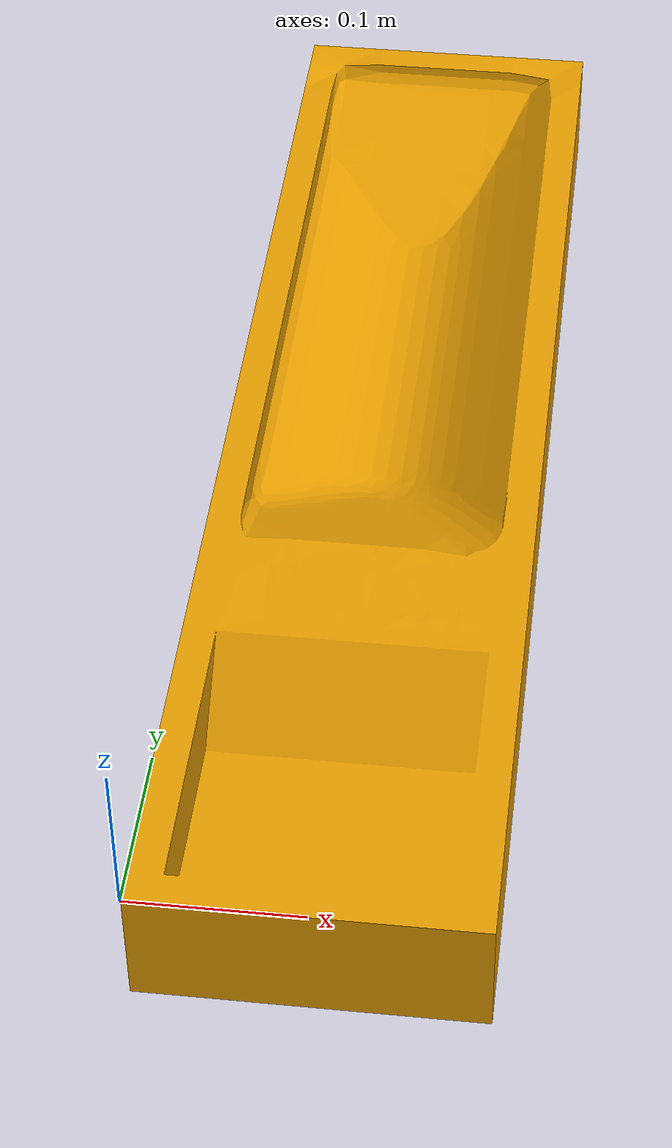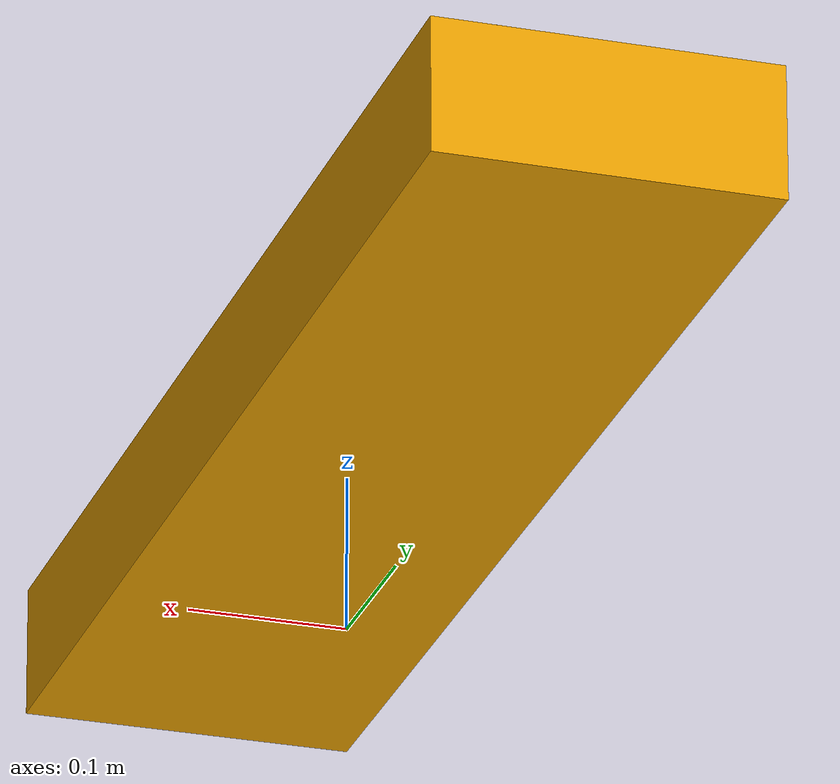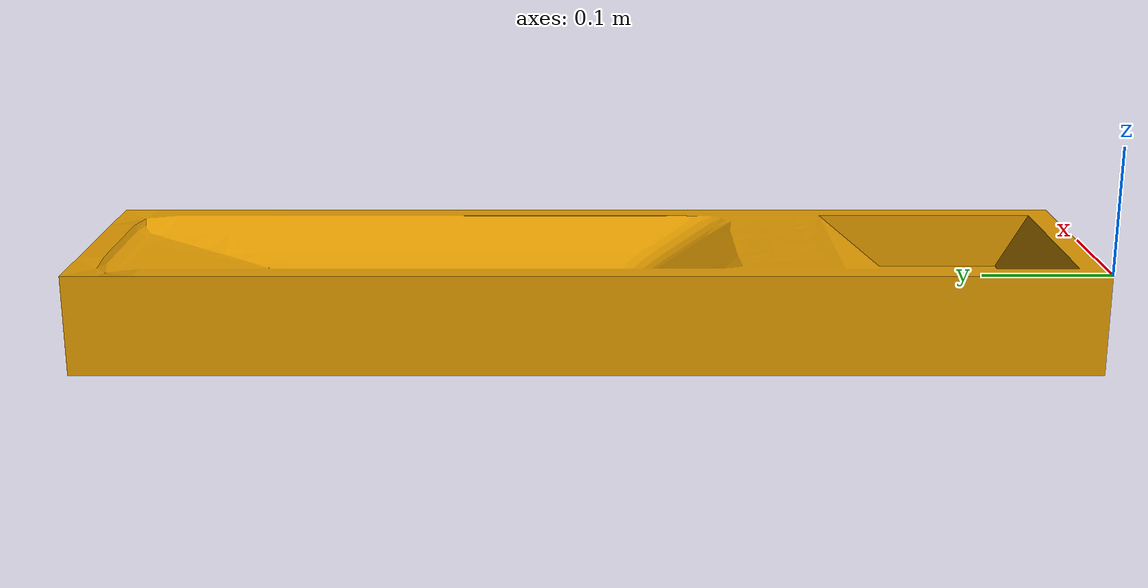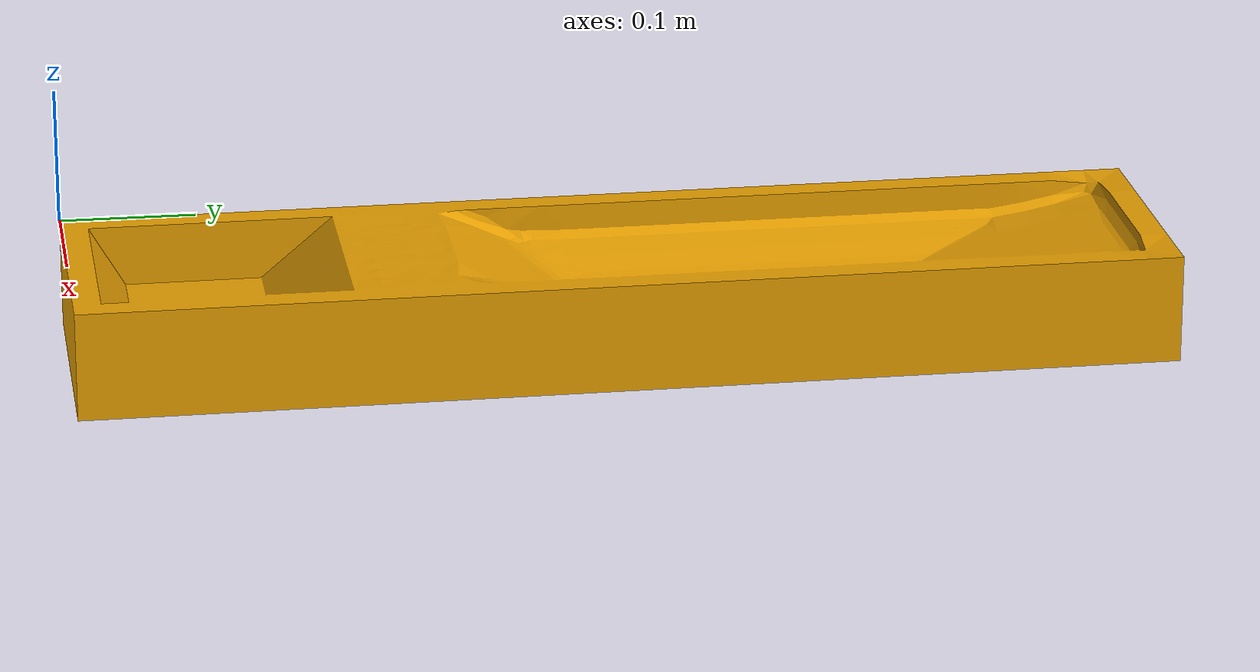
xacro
<?xml version="1.0" encoding="utf-8"?>
<robot xmlns:xacro="http://www.ros.org/wiki/xacro" name="polishing_mold">

  <!-- polishing_mold Link -->
  <link name="polishing_mold">
    <visual>
      <origin xyz="0.0 0.0 0.0" rpy="0.0 0.0 0.0"/>
      <geometry>
        <mesh filename="package://franka_description/meshes/visual/polishing_mold.dae"/>
      </geometry>
    </visual>
    <collision>
      <origin xyz="0.0 0.0 0.0" rpy="0.0 0.0 0.0"/>
      <geometry>
        <mesh filename="package://franka_description/meshes/collision/polishing_mold.stl"/>
      </geometry>
    </collision>
  </link>

</robot>
